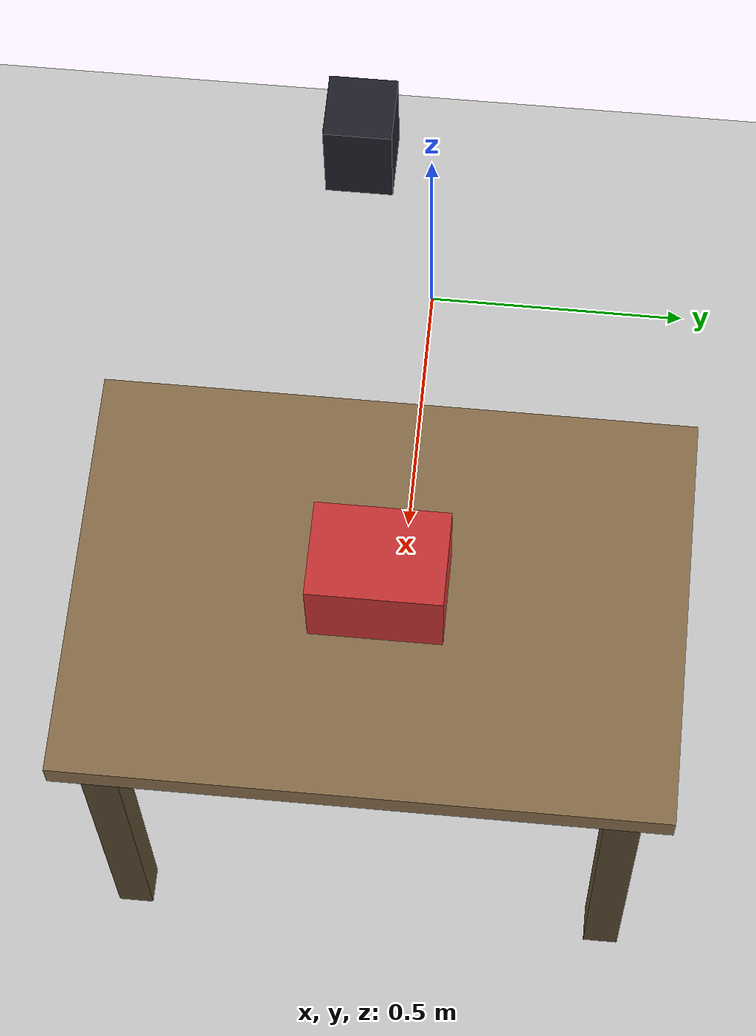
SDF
<?xml version="1.0" ?>
<sdf version="1.6">
  <world name="ur10_obstacle_scene">
    <include>
      <uri>model://ground_plane</uri>
    </include>
    <include>
      <uri>model://sun</uri>
    </include>

    <model name="work_table">
      <static>true</static>
      <pose>0 0 0 0 0 0</pose>
      <link name="table_top_link">
        <pose>0.95 0.0 0.675 0 0 0</pose>
        <collision name="table_top_collision">
          <geometry>
            <box>
              <size>0.70 1.00 0.05</size>
            </box>
          </geometry>
        </collision>
        <visual name="table_top_visual">
          <geometry>
            <box>
              <size>0.70 1.00 0.05</size>
            </box>
          </geometry>
          <material>
            <ambient>0.55 0.44 0.30 1</ambient>
            <diffuse>0.55 0.44 0.30 1</diffuse>
          </material>
        </visual>
      </link>
      <link name="table_leg_fl">
        <pose>0.64 0.42 0.325 0 0 0</pose>
        <visual name="table_leg_fl_visual">
          <geometry>
            <box>
              <size>0.06 0.06 0.65</size>
            </box>
          </geometry>
          <material>
            <ambient>0.35 0.28 0.18 1</ambient>
            <diffuse>0.35 0.28 0.18 1</diffuse>
          </material>
        </visual>
      </link>
      <link name="table_leg_fr">
        <pose>0.64 -0.42 0.325 0 0 0</pose>
        <visual name="table_leg_fr_visual">
          <geometry>
            <box>
              <size>0.06 0.06 0.65</size>
            </box>
          </geometry>
          <material>
            <ambient>0.35 0.28 0.18 1</ambient>
            <diffuse>0.35 0.28 0.18 1</diffuse>
          </material>
        </visual>
      </link>
      <link name="table_leg_rl">
        <pose>1.26 0.42 0.325 0 0 0</pose>
        <visual name="table_leg_rl_visual">
          <geometry>
            <box>
              <size>0.06 0.06 0.65</size>
            </box>
          </geometry>
          <material>
            <ambient>0.35 0.28 0.18 1</ambient>
            <diffuse>0.35 0.28 0.18 1</diffuse>
          </material>
        </visual>
      </link>
      <link name="table_leg_rr">
        <pose>1.26 -0.42 0.325 0 0 0</pose>
        <visual name="table_leg_rr_visual">
          <geometry>
            <box>
              <size>0.06 0.06 0.65</size>
            </box>
          </geometry>
          <material>
            <ambient>0.35 0.28 0.18 1</ambient>
            <diffuse>0.35 0.28 0.18 1</diffuse>
          </material>
        </visual>
      </link>
    </model>

    <model name="scene_box_obstacle">
      <static>true</static>
      <pose>0.95 0.00 0.78 0 0 0</pose>
      <link name="box_link">
        <collision name="box_collision">
          <geometry>
            <box>
              <size>0.16 0.22 0.16</size>
            </box>
          </geometry>
        </collision>
        <visual name="box_visual">
          <geometry>
            <box>
              <size>0.16 0.22 0.16</size>
            </box>
          </geometry>
          <material>
            <ambient>0.80 0.20 0.20 1</ambient>
            <diffuse>0.80 0.20 0.20 1</diffuse>
          </material>
        </visual>
      </link>
    </model>

    <model name="gantry_depth_camera_model">
      <static>true</static>
      <pose>0.95 0.0 2.05 0 1.57079632679 3.14159265359</pose>
      <link name="gantry_depth_camera_link">
        <visual name="camera_body_visual">
          <geometry>
            <box>
              <size>0.12 0.08 0.08</size>
            </box>
          </geometry>
          <material>
            <ambient>0.12 0.12 0.16 1.0</ambient>
            <diffuse>0.12 0.12 0.16 1.0</diffuse>
          </material>
        </visual>
        <sensor type="depth" name="gantry_depth_sensor">
          <always_on>true</always_on>
          <update_rate>20.0</update_rate>
          <visualize>true</visualize>
          <camera>
            <horizontal_fov>1.25</horizontal_fov>
            <image>
              <width>640</width>
              <height>480</height>
              <format>B8G8R8</format>
            </image>
            <depth_camera/>
            <clip>
              <near>0.10</near>
              <far>5.0</far>
            </clip>
          </camera>
          <plugin name="gantry_depth_camera_controller" filename="libgazebo_ros_camera.so">
            <ros>
              <namespace>/gantry_depth_camera</namespace>
              <remapping>gantry_depth/image_raw:=depth/image_raw</remapping>
              <remapping>gantry_depth/depth/image_raw:=depth/image_raw</remapping>
              <remapping>gantry_depth/camera_info:=camera_info</remapping>
              <remapping>gantry_depth/depth/camera_info:=depth/camera_info</remapping>
              <remapping>gantry_depth/points:=points</remapping>
            </ros>
            <camera_name>gantry_depth</camera_name>
            <frame_name>gantry_depth_camera_link</frame_name>
            <hack_baseline>0.0</hack_baseline>
            <min_depth>0.10</min_depth>
            <max_depth>5.0</max_depth>
          </plugin>
        </sensor>
      </link>
    </model>
  </world>
</sdf>
